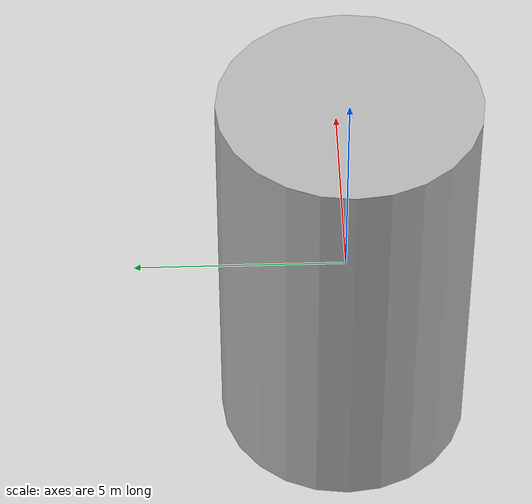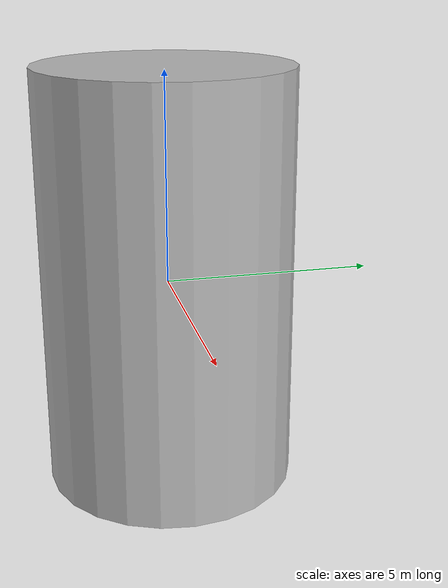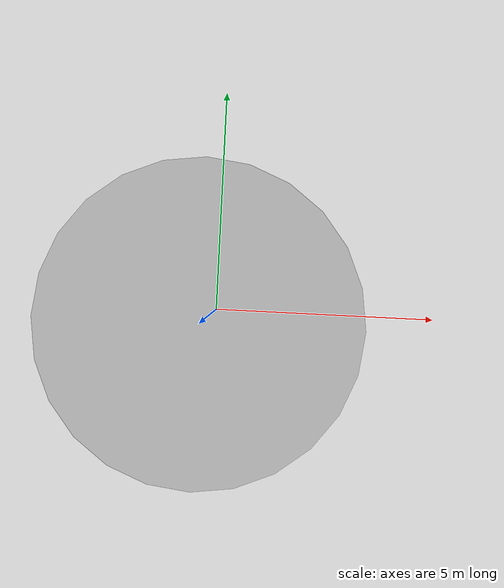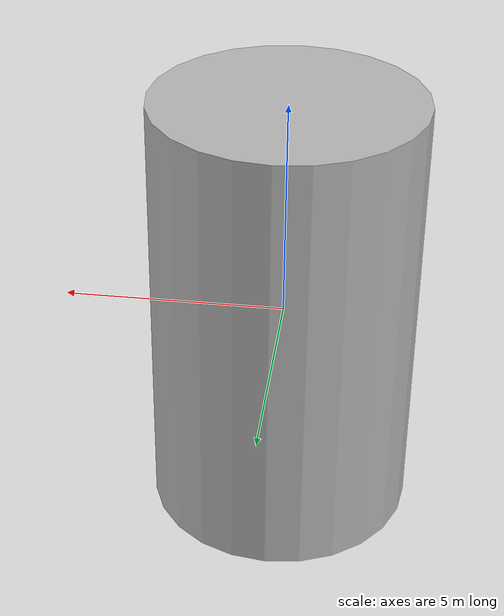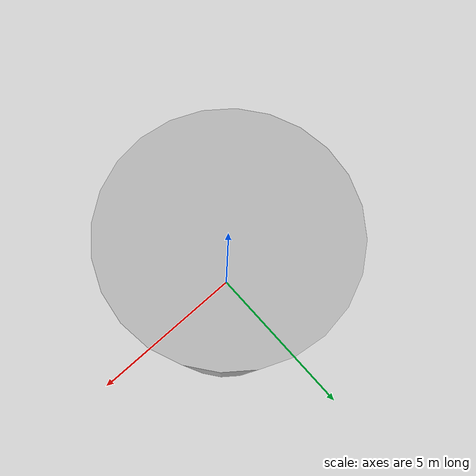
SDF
<?xml version="1.0" ?>
<sdf version="1.5">
  <model name="tower">
    <link name="link">
      <pose>0 0 0.115 0 0 1.57</pose>
      <inertial>
        <mass>0.190</mass>
        <inertia>
          <ixx>0.00058</ixx>
          <ixy>0</ixy>
          <ixz>0</ixz>
          <iyy>0.00058</iyy>
          <iyz>0</iyz>
          <izz>0.00019</izz>
        </inertia>
      </inertial>
      <collision name="collision">
        <geometry>
          <cylinder>
            <radius>3.000000</radius>
            <length>10.000000</length>
          </cylinder>
        </geometry>
      </collision>
      <visual name="visual">
        <geometry>
          <cylinder>
            <radius>3.000000</radius>
            <length>10.000000</length>
          </cylinder>
        </geometry>
        <material>
          <script>
            <uri>model://tower/materials/scripts</uri>
            <uri>model://tower/materials/textures</uri>
            <name>Tower/Diffuse</name>
          </script>
        </material>
      </visual>
    </link>
    <plugin name='usv_dynamics_wamv_dynamics_plugin' filename='libgazebo_usv_dynamics_plugin.so'>
      <bodyName>link</bodyName>
      <waterLevel>0</waterLevel>
      <waterDensity>997.8</waterDensity>
      <xDotU>0.0</xDotU>
      <yDotV>0.0</yDotV>
      <nDotR>0.0</nDotR>
      <xU>1.0</xU>
      <yV>1.0</yV>
      <zW>1.0</zW>
      <hullRadius>0.0381</hullRadius>
      <boatWidth>0.1</boatWidth>
      <boatLength>0.23</boatLength>
      <length_n>1.5</length_n>
      <wave_model>ocean_waves</wave_model>
    </plugin>
  </model>
</sdf>
